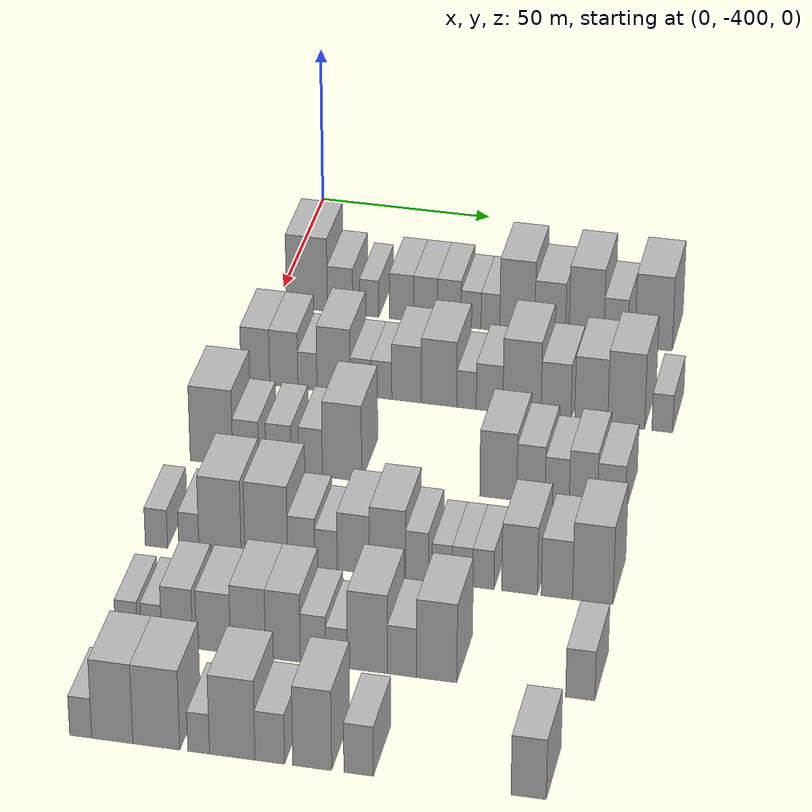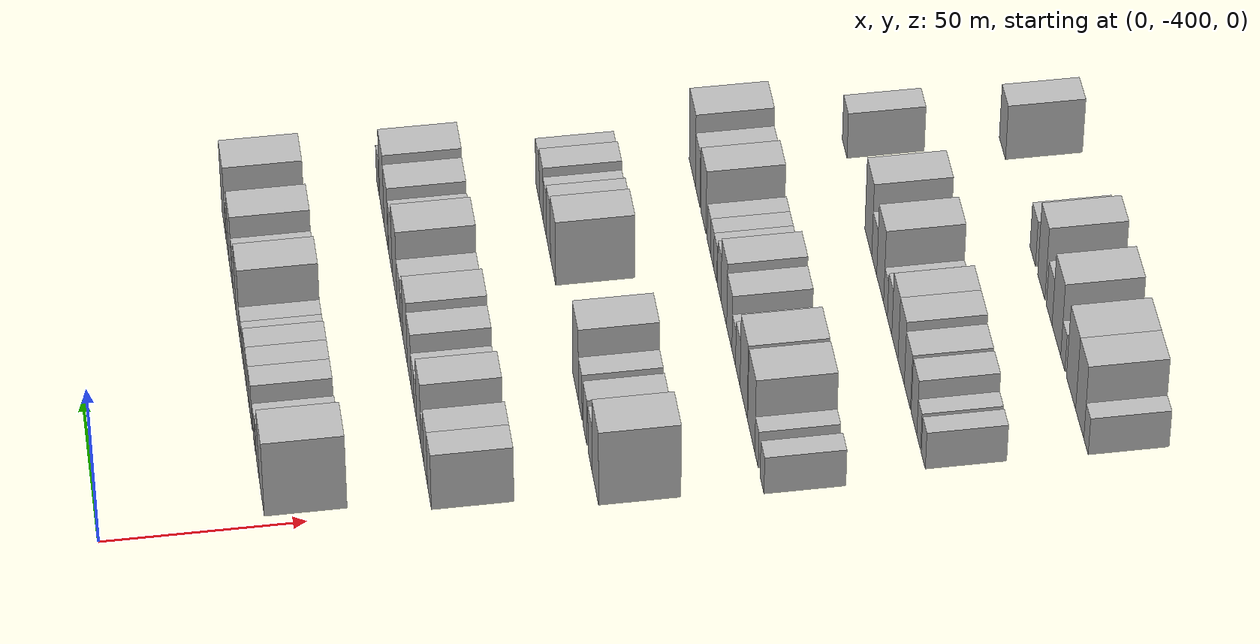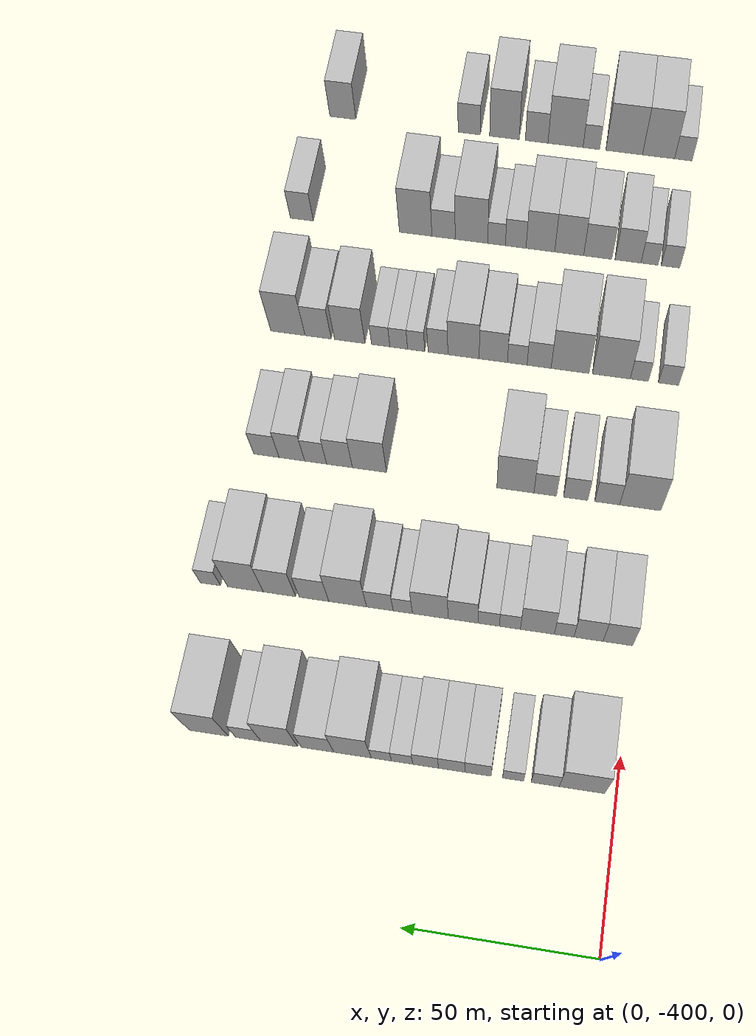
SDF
<sdf version="1.6">
 <world name="default">
  <model name="building_26">
   <static>1</static>
   <pose>50.0000 -390.8958 0 0.000000 0.000000 0.000000</pose>
   <link name="link">
    <pose>0 0 12.00 0 0 0</pose>
    <collision name="collision"><geometry><box><size>20.0000 11.8861 24.0000</size></box></geometry></collision>
    <visual name="visual">
     <cast_shadows>0</cast_shadows>
     <geometry><box><size>20.0000 11.8861 24.0000</size></box></geometry>
     <material>
      <script>
       <uri>model://HANNAS_wall/materials/scripts</uri>
       <uri>model://HANNAS_wall/materials/textures</uri>
       <name>vrc/HANNAS_wall</name>
      </script>
     </material>
    </visual>
   </link>
  </model>
  <model name="building_27">
   <static>1</static>
   <pose>50.0000 -381.2892 0 0.000000 0.000000 0.000000</pose>
   <link name="link">
    <pose>0 0 7.50 0 0 0</pose>
    <collision name="collision"><geometry><box><size>20.0000 7.3271 15.0000</size></box></geometry></collision>
    <visual name="visual">
     <cast_shadows>0</cast_shadows>
     <geometry><box><size>20.0000 7.3271 15.0000</size></box></geometry>
     <material>
      <script>
       <uri>model://HANNAS_wall/materials/scripts</uri>
       <uri>model://HANNAS_wall/materials/textures</uri>
       <name>vrc/HANNAS_wall</name>
      </script>
     </material>
    </visual>
   </link>
  </model>
  <model name="building_28">
   <static>1</static>
   <pose>50.0000 -372.8500 0 0.000000 0.000000 0.000000</pose>
   <link name="link">
    <pose>0 0 6.00 0 0 0</pose>
    <collision name="collision"><geometry><box><size>20.0000 5.5512 12.0000</size></box></geometry></collision>
    <visual name="visual">
     <cast_shadows>0</cast_shadows>
     <geometry><box><size>20.0000 5.5512 12.0000</size></box></geometry>
     <material>
      <script>
       <uri>model://HANNAS_wall/materials/scripts</uri>
       <uri>model://HANNAS_wall/materials/textures</uri>
       <name>vrc/HANNAS_wall</name>
      </script>
     </material>
    </visual>
   </link>
  </model>
  <model name="building_29">
   <static>1</static>
   <pose>50.0000 -363.5970 0 0.000000 0.000000 0.000000</pose>
   <link name="link">
    <pose>0 0 7.50 0 0 0</pose>
    <collision name="collision"><geometry><box><size>20.0000 6.9548 15.0000</size></box></geometry></collision>
    <visual name="visual">
     <cast_shadows>0</cast_shadows>
     <geometry><box><size>20.0000 6.9548 15.0000</size></box></geometry>
     <material>
      <script>
       <uri>model://HANNAS_wall/materials/scripts</uri>
       <uri>model://HANNAS_wall/materials/textures</uri>
       <name>vrc/HANNAS_wall</name>
      </script>
     </material>
    </visual>
   </link>
  </model>
  <model name="building_30">
   <static>1</static>
   <pose>50.0000 -356.6637 0 0.000000 0.000000 0.000000</pose>
   <link name="link">
    <pose>0 0 7.50 0 0 0</pose>
    <collision name="collision"><geometry><box><size>20.0000 6.9119 15.0000</size></box></geometry></collision>
    <visual name="visual">
     <cast_shadows>0</cast_shadows>
     <geometry><box><size>20.0000 6.9119 15.0000</size></box></geometry>
     <material>
      <script>
       <uri>model://HANNAS_wall/materials/scripts</uri>
       <uri>model://HANNAS_wall/materials/textures</uri>
       <name>vrc/HANNAS_wall</name>
      </script>
     </material>
    </visual>
   </link>
  </model>
  <model name="building_31">
   <static>1</static>
   <pose>50.0000 -349.8199 0 0.000000 0.000000 0.000000</pose>
   <link name="link">
    <pose>0 0 7.50 0 0 0</pose>
    <collision name="collision"><geometry><box><size>20.0000 6.7757 15.0000</size></box></geometry></collision>
    <visual name="visual">
     <cast_shadows>0</cast_shadows>
     <geometry><box><size>20.0000 6.7757 15.0000</size></box></geometry>
     <material>
      <script>
       <uri>model://HANNAS_wall/materials/scripts</uri>
       <uri>model://HANNAS_wall/materials/textures</uri>
       <name>vrc/HANNAS_wall</name>
      </script>
     </material>
    </visual>
   </link>
  </model>
  <model name="building_32">
   <static>1</static>
   <pose>50.0000 -343.5941 0 0.000000 0.000000 0.000000</pose>
   <link name="link">
    <pose>0 0 6.00 0 0 0</pose>
    <collision name="collision"><geometry><box><size>20.0000 5.6757 12.0000</size></box></geometry></collision>
    <visual name="visual">
     <cast_shadows>0</cast_shadows>
     <geometry><box><size>20.0000 5.6757 12.0000</size></box></geometry>
     <material>
      <script>
       <uri>model://HANNAS_wall/materials/scripts</uri>
       <uri>model://HANNAS_wall/materials/textures</uri>
       <name>vrc/HANNAS_wall</name>
      </script>
     </material>
    </visual>
   </link>
  </model>
  <model name="building_33">
   <static>1</static>
   <pose>50.0000 -338.0735 0 0.000000 0.000000 0.000000</pose>
   <link name="link">
    <pose>0 0 6.00 0 0 0</pose>
    <collision name="collision"><geometry><box><size>20.0000 5.3656 12.0000</size></box></geometry></collision>
    <visual name="visual">
     <cast_shadows>0</cast_shadows>
     <geometry><box><size>20.0000 5.3656 12.0000</size></box></geometry>
     <material>
      <script>
       <uri>model://HANNAS_wall/materials/scripts</uri>
       <uri>model://HANNAS_wall/materials/textures</uri>
       <name>vrc/HANNAS_wall</name>
      </script>
     </material>
    </visual>
   </link>
  </model>
  <model name="building_34">
   <static>1</static>
   <pose>50.0000 -330.3880 0 0.000000 0.000000 0.000000</pose>
   <link name="link">
    <pose>0 0 12.00 0 0 0</pose>
    <collision name="collision"><geometry><box><size>20.0000 10.0054 24.0000</size></box></geometry></collision>
    <visual name="visual">
     <cast_shadows>0</cast_shadows>
     <geometry><box><size>20.0000 10.0054 24.0000</size></box></geometry>
     <material>
      <script>
       <uri>model://HANNAS_wall/materials/scripts</uri>
       <uri>model://HANNAS_wall/materials/textures</uri>
       <name>vrc/HANNAS_wall</name>
      </script>
     </material>
    </visual>
   </link>
  </model>
  <model name="building_35">
   <static>1</static>
   <pose>50.0000 -321.0289 0 0.000000 0.000000 0.000000</pose>
   <link name="link">
    <pose>0 0 9.00 0 0 0</pose>
    <collision name="collision"><geometry><box><size>20.0000 8.7128 18.0000</size></box></geometry></collision>
    <visual name="visual">
     <cast_shadows>0</cast_shadows>
     <geometry><box><size>20.0000 8.7128 18.0000</size></box></geometry>
     <material>
      <script>
       <uri>model://HANNAS_wall/materials/scripts</uri>
       <uri>model://HANNAS_wall/materials/textures</uri>
       <name>vrc/HANNAS_wall</name>
      </script>
     </material>
    </visual>
   </link>
  </model>
  <model name="building_36">
   <static>1</static>
   <pose>50.0000 -310.7401 0 0.000000 0.000000 0.000000</pose>
   <link name="link">
    <pose>0 0 12.00 0 0 0</pose>
    <collision name="collision"><geometry><box><size>20.0000 9.8648 24.0000</size></box></geometry></collision>
    <visual name="visual">
     <cast_shadows>0</cast_shadows>
     <geometry><box><size>20.0000 9.8648 24.0000</size></box></geometry>
     <material>
      <script>
       <uri>model://HANNAS_wall/materials/scripts</uri>
       <uri>model://HANNAS_wall/materials/textures</uri>
       <name>vrc/HANNAS_wall</name>
      </script>
     </material>
    </visual>
   </link>
  </model>
  <model name="building_37">
   <static>1</static>
   <pose>50.0000 -302.4191 0 0.000000 0.000000 0.000000</pose>
   <link name="link">
    <pose>0 0 7.50 0 0 0</pose>
    <collision name="collision"><geometry><box><size>20.0000 6.7772 15.0000</size></box></geometry></collision>
    <visual name="visual">
     <cast_shadows>0</cast_shadows>
     <geometry><box><size>20.0000 6.7772 15.0000</size></box></geometry>
     <material>
      <script>
       <uri>model://HANNAS_wall/materials/scripts</uri>
       <uri>model://HANNAS_wall/materials/textures</uri>
       <name>vrc/HANNAS_wall</name>
      </script>
     </material>
    </visual>
   </link>
  </model>
  <model name="building_38">
   <static>1</static>
   <pose>50.0000 -291.7597 0 0.000000 0.000000 0.000000</pose>
   <link name="link">
    <pose>0 0 12.00 0 0 0</pose>
    <collision name="collision"><geometry><box><size>20.0000 10.5417 24.0000</size></box></geometry></collision>
    <visual name="visual">
     <cast_shadows>0</cast_shadows>
     <geometry><box><size>20.0000 10.5417 24.0000</size></box></geometry>
     <material>
      <script>
       <uri>model://HANNAS_wall/materials/scripts</uri>
       <uri>model://HANNAS_wall/materials/textures</uri>
       <name>vrc/HANNAS_wall</name>
      </script>
     </material>
    </visual>
   </link>
  </model>
  <model name="building_159">
   <static>1</static>
   <pose>90.0000 -396.1347 0 0.000000 0.000000 0.000000</pose>
   <link name="link">
    <pose>0 0 9.00 0 0 0</pose>
    <collision name="collision"><geometry><box><size>20.0000 8.0640 18.0000</size></box></geometry></collision>
    <visual name="visual">
     <cast_shadows>0</cast_shadows>
     <geometry><box><size>20.0000 8.0640 18.0000</size></box></geometry>
     <material>
      <script>
       <uri>model://HANNAS_wall/materials/scripts</uri>
       <uri>model://HANNAS_wall/materials/textures</uri>
       <name>vrc/HANNAS_wall</name>
      </script>
     </material>
    </visual>
   </link>
  </model>
  <model name="building_160">
   <static>1</static>
   <pose>90.0000 -388.1130 0 0.000000 0.000000 0.000000</pose>
   <link name="link">
    <pose>0 0 9.00 0 0 0</pose>
    <collision name="collision"><geometry><box><size>20.0000 7.9795 18.0000</size></box></geometry></collision>
    <visual name="visual">
     <cast_shadows>0</cast_shadows>
     <geometry><box><size>20.0000 7.9795 18.0000</size></box></geometry>
     <material>
      <script>
       <uri>model://HANNAS_wall/materials/scripts</uri>
       <uri>model://HANNAS_wall/materials/textures</uri>
       <name>vrc/HANNAS_wall</name>
      </script>
     </material>
    </visual>
   </link>
  </model>
  <model name="building_161">
   <static>1</static>
   <pose>90.0000 -381.4385 0 0.000000 0.000000 0.000000</pose>
   <link name="link">
    <pose>0 0 6.00 0 0 0</pose>
    <collision name="collision"><geometry><box><size>20.0000 5.3695 12.0000</size></box></geometry></collision>
    <visual name="visual">
     <cast_shadows>0</cast_shadows>
     <geometry><box><size>20.0000 5.3695 12.0000</size></box></geometry>
     <material>
      <script>
       <uri>model://HANNAS_wall/materials/scripts</uri>
       <uri>model://HANNAS_wall/materials/textures</uri>
       <name>vrc/HANNAS_wall</name>
      </script>
     </material>
    </visual>
   </link>
  </model>
  <model name="building_162">
   <static>1</static>
   <pose>90.0000 -374.0866 0 0.000000 0.000000 0.000000</pose>
   <link name="link">
    <pose>0 0 10.50 0 0 0</pose>
    <collision name="collision"><geometry><box><size>20.0000 9.3342 21.0000</size></box></geometry></collision>
    <visual name="visual">
     <cast_shadows>0</cast_shadows>
     <geometry><box><size>20.0000 9.3342 21.0000</size></box></geometry>
     <material>
      <script>
       <uri>model://HANNAS_wall/materials/scripts</uri>
       <uri>model://HANNAS_wall/materials/textures</uri>
       <name>vrc/HANNAS_wall</name>
      </script>
     </material>
    </visual>
   </link>
  </model>
  <model name="building_163">
   <static>1</static>
   <pose>90.0000 -366.5296 0 0.000000 0.000000 0.000000</pose>
   <link name="link">
    <pose>0 0 6.00 0 0 0</pose>
    <collision name="collision"><geometry><box><size>20.0000 5.7799 12.0000</size></box></geometry></collision>
    <visual name="visual">
     <cast_shadows>0</cast_shadows>
     <geometry><box><size>20.0000 5.7799 12.0000</size></box></geometry>
     <material>
      <script>
       <uri>model://HANNAS_wall/materials/scripts</uri>
       <uri>model://HANNAS_wall/materials/textures</uri>
       <name>vrc/HANNAS_wall</name>
      </script>
     </material>
    </visual>
   </link>
  </model>
  <model name="building_164">
   <static>1</static>
   <pose>90.0000 -360.6935 0 0.000000 0.000000 0.000000</pose>
   <link name="link">
    <pose>0 0 6.00 0 0 0</pose>
    <collision name="collision"><geometry><box><size>20.0000 5.8923 12.0000</size></box></geometry></collision>
    <visual name="visual">
     <cast_shadows>0</cast_shadows>
     <geometry><box><size>20.0000 5.8923 12.0000</size></box></geometry>
     <material>
      <script>
       <uri>model://HANNAS_wall/materials/scripts</uri>
       <uri>model://HANNAS_wall/materials/textures</uri>
       <name>vrc/HANNAS_wall</name>
      </script>
     </material>
    </visual>
   </link>
  </model>
  <model name="building_165">
   <static>1</static>
   <pose>90.0000 -353.6318 0 0.000000 0.000000 0.000000</pose>
   <link name="link">
    <pose>0 0 9.00 0 0 0</pose>
    <collision name="collision"><geometry><box><size>20.0000 8.2311 18.0000</size></box></geometry></collision>
    <visual name="visual">
     <cast_shadows>0</cast_shadows>
     <geometry><box><size>20.0000 8.2311 18.0000</size></box></geometry>
     <material>
      <script>
       <uri>model://HANNAS_wall/materials/scripts</uri>
       <uri>model://HANNAS_wall/materials/textures</uri>
       <name>vrc/HANNAS_wall</name>
      </script>
     </material>
    </visual>
   </link>
  </model>
  <model name="building_166">
   <static>1</static>
   <pose>90.0000 -344.5657 0 0.000000 0.000000 0.000000</pose>
   <link name="link">
    <pose>0 0 10.50 0 0 0</pose>
    <collision name="collision"><geometry><box><size>20.0000 9.9011 21.0000</size></box></geometry></collision>
    <visual name="visual">
     <cast_shadows>0</cast_shadows>
     <geometry><box><size>20.0000 9.9011 21.0000</size></box></geometry>
     <material>
      <script>
       <uri>model://HANNAS_wall/materials/scripts</uri>
       <uri>model://HANNAS_wall/materials/textures</uri>
       <name>vrc/HANNAS_wall</name>
      </script>
     </material>
    </visual>
   </link>
  </model>
  <model name="building_167">
   <static>1</static>
   <pose>90.0000 -336.9242 0 0.000000 0.000000 0.000000</pose>
   <link name="link">
    <pose>0 0 6.00 0 0 0</pose>
    <collision name="collision"><geometry><box><size>20.0000 5.3817 12.0000</size></box></geometry></collision>
    <visual name="visual">
     <cast_shadows>0</cast_shadows>
     <geometry><box><size>20.0000 5.3817 12.0000</size></box></geometry>
     <material>
      <script>
       <uri>model://HANNAS_wall/materials/scripts</uri>
       <uri>model://HANNAS_wall/materials/textures</uri>
       <name>vrc/HANNAS_wall</name>
      </script>
     </material>
    </visual>
   </link>
  </model>
  <model name="building_168">
   <static>1</static>
   <pose>90.0000 -330.5362 0 0.000000 0.000000 0.000000</pose>
   <link name="link">
    <pose>0 0 7.50 0 0 0</pose>
    <collision name="collision"><geometry><box><size>20.0000 7.3944 15.0000</size></box></geometry></collision>
    <visual name="visual">
     <cast_shadows>0</cast_shadows>
     <geometry><box><size>20.0000 7.3944 15.0000</size></box></geometry>
     <material>
      <script>
       <uri>model://HANNAS_wall/materials/scripts</uri>
       <uri>model://HANNAS_wall/materials/textures</uri>
       <name>vrc/HANNAS_wall</name>
      </script>
     </material>
    </visual>
   </link>
  </model>
  <model name="building_169">
   <static>1</static>
   <pose>90.0000 -321.5700 0 0.000000 0.000000 0.000000</pose>
   <link name="link">
    <pose>0 0 12.00 0 0 0</pose>
    <collision name="collision"><geometry><box><size>20.0000 10.5380 24.0000</size></box></geometry></collision>
    <visual name="visual">
     <cast_shadows>0</cast_shadows>
     <geometry><box><size>20.0000 10.5380 24.0000</size></box></geometry>
     <material>
      <script>
       <uri>model://HANNAS_wall/materials/scripts</uri>
       <uri>model://HANNAS_wall/materials/textures</uri>
       <name>vrc/HANNAS_wall</name>
      </script>
     </material>
    </visual>
   </link>
  </model>
  <model name="building_170">
   <static>1</static>
   <pose>90.0000 -312.1652 0 0.000000 0.000000 0.000000</pose>
   <link name="link">
    <pose>0 0 9.00 0 0 0</pose>
    <collision name="collision"><geometry><box><size>20.0000 8.2715 18.0000</size></box></geometry></collision>
    <visual name="visual">
     <cast_shadows>0</cast_shadows>
     <geometry><box><size>20.0000 8.2715 18.0000</size></box></geometry>
     <material>
      <script>
       <uri>model://HANNAS_wall/materials/scripts</uri>
       <uri>model://HANNAS_wall/materials/textures</uri>
       <name>vrc/HANNAS_wall</name>
      </script>
     </material>
    </visual>
   </link>
  </model>
  <model name="building_171">
   <static>1</static>
   <pose>90.0000 -302.4751 0 0.000000 0.000000 0.000000</pose>
   <link name="link">
    <pose>0 0 10.50 0 0 0</pose>
    <collision name="collision"><geometry><box><size>20.0000 9.1089 21.0000</size></box></geometry></collision>
    <visual name="visual">
     <cast_shadows>0</cast_shadows>
     <geometry><box><size>20.0000 9.1089 21.0000</size></box></geometry>
     <material>
      <script>
       <uri>model://HANNAS_wall/materials/scripts</uri>
       <uri>model://HANNAS_wall/materials/textures</uri>
       <name>vrc/HANNAS_wall</name>
      </script>
     </material>
    </visual>
   </link>
  </model>
  <model name="building_172">
   <static>1</static>
   <pose>90.0000 -292.8738 0 0.000000 0.000000 0.000000</pose>
   <link name="link">
    <pose>0 0 12.00 0 0 0</pose>
    <collision name="collision"><geometry><box><size>20.0000 10.0936 24.0000</size></box></geometry></collision>
    <visual name="visual">
     <cast_shadows>0</cast_shadows>
     <geometry><box><size>20.0000 10.0936 24.0000</size></box></geometry>
     <material>
      <script>
       <uri>model://HANNAS_wall/materials/scripts</uri>
       <uri>model://HANNAS_wall/materials/textures</uri>
       <name>vrc/HANNAS_wall</name>
      </script>
     </material>
    </visual>
   </link>
  </model>
  <model name="building_173">
   <static>1</static>
   <pose>90.0000 -282.9860 0 0.000000 0.000000 0.000000</pose>
   <link name="link">
    <pose>0 0 6.00 0 0 0</pose>
    <collision name="collision"><geometry><box><size>20.0000 5.6821 12.0000</size></box></geometry></collision>
    <visual name="visual">
     <cast_shadows>0</cast_shadows>
     <geometry><box><size>20.0000 5.6821 12.0000</size></box></geometry>
     <material>
      <script>
       <uri>model://HANNAS_wall/materials/scripts</uri>
       <uri>model://HANNAS_wall/materials/textures</uri>
       <name>vrc/HANNAS_wall</name>
      </script>
     </material>
    </visual>
   </link>
  </model>
  <model name="building_291">
   <static>1</static>
   <pose>130.0000 -398.3612 0 0.000000 0.000000 0.000000</pose>
   <link name="link">
    <pose>0 0 12.00 0 0 0</pose>
    <collision name="collision"><geometry><box><size>20.0000 11.7303 24.0000</size></box></geometry></collision>
    <visual name="visual">
     <cast_shadows>0</cast_shadows>
     <geometry><box><size>20.0000 11.7303 24.0000</size></box></geometry>
     <material>
      <script>
       <uri>model://HANNAS_wall/materials/scripts</uri>
       <uri>model://HANNAS_wall/materials/textures</uri>
       <name>vrc/HANNAS_wall</name>
      </script>
     </material>
    </visual>
   </link>
  </model>
  <model name="building_292">
   <static>1</static>
   <pose>130.0000 -388.9594 0 0.000000 0.000000 0.000000</pose>
   <link name="link">
    <pose>0 0 7.50 0 0 0</pose>
    <collision name="collision"><geometry><box><size>20.0000 7.0733 15.0000</size></box></geometry></collision>
    <visual name="visual">
     <cast_shadows>0</cast_shadows>
     <geometry><box><size>20.0000 7.0733 15.0000</size></box></geometry>
     <material>
      <script>
       <uri>model://HANNAS_wall/materials/scripts</uri>
       <uri>model://HANNAS_wall/materials/textures</uri>
       <name>vrc/HANNAS_wall</name>
      </script>
     </material>
    </visual>
   </link>
  </model>
  <model name="building_293">
   <static>1</static>
   <pose>130.0000 -379.9406 0 0.000000 0.000000 0.000000</pose>
   <link name="link">
    <pose>0 0 7.50 0 0 0</pose>
    <collision name="collision"><geometry><box><size>20.0000 6.9643 15.0000</size></box></geometry></collision>
    <visual name="visual">
     <cast_shadows>0</cast_shadows>
     <geometry><box><size>20.0000 6.9643 15.0000</size></box></geometry>
     <material>
      <script>
       <uri>model://HANNAS_wall/materials/scripts</uri>
       <uri>model://HANNAS_wall/materials/textures</uri>
       <name>vrc/HANNAS_wall</name>
      </script>
     </material>
    </visual>
   </link>
  </model>
  <model name="building_294">
   <static>1</static>
   <pose>130.0000 -371.2298 0 0.000000 0.000000 0.000000</pose>
   <link name="link">
    <pose>0 0 7.50 0 0 0</pose>
    <collision name="collision"><geometry><box><size>20.0000 6.4573 15.0000</size></box></geometry></collision>
    <visual name="visual">
     <cast_shadows>0</cast_shadows>
     <geometry><box><size>20.0000 6.4573 15.0000</size></box></geometry>
     <material>
      <script>
       <uri>model://HANNAS_wall/materials/scripts</uri>
       <uri>model://HANNAS_wall/materials/textures</uri>
       <name>vrc/HANNAS_wall</name>
      </script>
     </material>
    </visual>
   </link>
  </model>
  <model name="building_295">
   <static>1</static>
   <pose>130.0000 -362.6679 0 0.000000 0.000000 0.000000</pose>
   <link name="link">
    <pose>0 0 12.00 0 0 0</pose>
    <collision name="collision"><geometry><box><size>20.0000 10.6665 24.0000</size></box></geometry></collision>
    <visual name="visual">
     <cast_shadows>0</cast_shadows>
     <geometry><box><size>20.0000 10.6665 24.0000</size></box></geometry>
     <material>
      <script>
       <uri>model://HANNAS_wall/materials/scripts</uri>
       <uri>model://HANNAS_wall/materials/textures</uri>
       <name>vrc/HANNAS_wall</name>
      </script>
     </material>
    </visual>
   </link>
  </model>
  <model name="building_296">
   <static>1</static>
   <pose>130.0000 -320.4191 0 0.000000 0.000000 0.000000</pose>
   <link name="link">
    <pose>0 0 10.50 0 0 0</pose>
    <collision name="collision"><geometry><box><size>20.0000 9.9437 21.0000</size></box></geometry></collision>
    <visual name="visual">
     <cast_shadows>0</cast_shadows>
     <geometry><box><size>20.0000 9.9437 21.0000</size></box></geometry>
     <material>
      <script>
       <uri>model://HANNAS_wall/materials/scripts</uri>
       <uri>model://HANNAS_wall/materials/textures</uri>
       <name>vrc/HANNAS_wall</name>
      </script>
     </material>
    </visual>
   </link>
  </model>
  <model name="building_297">
   <static>1</static>
   <pose>130.0000 -311.6768 0 0.000000 0.000000 0.000000</pose>
   <link name="link">
    <pose>0 0 9.00 0 0 0</pose>
    <collision name="collision"><geometry><box><size>20.0000 7.5407 18.0000</size></box></geometry></collision>
    <visual name="visual">
     <cast_shadows>0</cast_shadows>
     <geometry><box><size>20.0000 7.5407 18.0000</size></box></geometry>
     <material>
      <script>
       <uri>model://HANNAS_wall/materials/scripts</uri>
       <uri>model://HANNAS_wall/materials/textures</uri>
       <name>vrc/HANNAS_wall</name>
      </script>
     </material>
    </visual>
   </link>
  </model>
  <model name="building_298">
   <static>1</static>
   <pose>130.0000 -304.6813 0 0.000000 0.000000 0.000000</pose>
   <link name="link">
    <pose>0 0 7.50 0 0 0</pose>
    <collision name="collision"><geometry><box><size>20.0000 6.4504 15.0000</size></box></geometry></collision>
    <visual name="visual">
     <cast_shadows>0</cast_shadows>
     <geometry><box><size>20.0000 6.4504 15.0000</size></box></geometry>
     <material>
      <script>
       <uri>model://HANNAS_wall/materials/scripts</uri>
       <uri>model://HANNAS_wall/materials/textures</uri>
       <name>vrc/HANNAS_wall</name>
      </script>
     </material>
    </visual>
   </link>
  </model>
  <model name="building_299">
   <static>1</static>
   <pose>130.0000 -297.6992 0 0.000000 0.000000 0.000000</pose>
   <link name="link">
    <pose>0 0 9.00 0 0 0</pose>
    <collision name="collision"><geometry><box><size>20.0000 7.5137 18.0000</size></box></geometry></collision>
    <visual name="visual">
     <cast_shadows>0</cast_shadows>
     <geometry><box><size>20.0000 7.5137 18.0000</size></box></geometry>
     <material>
      <script>
       <uri>model://HANNAS_wall/materials/scripts</uri>
       <uri>model://HANNAS_wall/materials/textures</uri>
       <name>vrc/HANNAS_wall</name>
      </script>
     </material>
    </visual>
   </link>
  </model>
  <model name="building_300">
   <static>1</static>
   <pose>130.0000 -290.2318 0 0.000000 0.000000 0.000000</pose>
   <link name="link">
    <pose>0 0 7.50 0 0 0</pose>
    <collision name="collision"><geometry><box><size>20.0000 7.4212 15.0000</size></box></geometry></collision>
    <visual name="visual">
     <cast_shadows>0</cast_shadows>
     <geometry><box><size>20.0000 7.4212 15.0000</size></box></geometry>
     <material>
      <script>
       <uri>model://HANNAS_wall/materials/scripts</uri>
       <uri>model://HANNAS_wall/materials/textures</uri>
       <name>vrc/HANNAS_wall</name>
      </script>
     </material>
    </visual>
   </link>
  </model>
  <model name="building_417">
   <static>1</static>
   <pose>170.0000 -402.9180 0 0.000000 0.000000 0.000000</pose>
   <link name="link">
    <pose>0 0 6.00 0 0 0</pose>
    <collision name="collision"><geometry><box><size>20.0000 5.9623 12.0000</size></box></geometry></collision>
    <visual name="visual">
     <cast_shadows>0</cast_shadows>
     <geometry><box><size>20.0000 5.9623 12.0000</size></box></geometry>
     <material>
      <script>
       <uri>model://HANNAS_wall/materials/scripts</uri>
       <uri>model://HANNAS_wall/materials/textures</uri>
       <name>vrc/HANNAS_wall</name>
      </script>
     </material>
    </visual>
   </link>
  </model>
  <model name="building_418">
   <static>1</static>
   <pose>170.0000 -394.2501 0 0.000000 0.000000 0.000000</pose>
   <link name="link">
    <pose>0 0 6.00 0 0 0</pose>
    <collision name="collision"><geometry><box><size>20.0000 5.3735 12.0000</size></box></geometry></collision>
    <visual name="visual">
     <cast_shadows>0</cast_shadows>
     <geometry><box><size>20.0000 5.3735 12.0000</size></box></geometry>
     <material>
      <script>
       <uri>model://HANNAS_wall/materials/scripts</uri>
       <uri>model://HANNAS_wall/materials/textures</uri>
       <name>vrc/HANNAS_wall</name>
      </script>
     </material>
    </visual>
   </link>
  </model>
  <model name="building_419">
   <static>1</static>
   <pose>170.0000 -385.9324 0 0.000000 0.000000 0.000000</pose>
   <link name="link">
    <pose>0 0 12.00 0 0 0</pose>
    <collision name="collision"><geometry><box><size>20.0000 11.2619 24.0000</size></box></geometry></collision>
    <visual name="visual">
     <cast_shadows>0</cast_shadows>
     <geometry><box><size>20.0000 11.2619 24.0000</size></box></geometry>
     <material>
      <script>
       <uri>model://HANNAS_wall/materials/scripts</uri>
       <uri>model://HANNAS_wall/materials/textures</uri>
       <name>vrc/HANNAS_wall</name>
      </script>
     </material>
    </visual>
   </link>
  </model>
  <model name="building_420">
   <static>1</static>
   <pose>170.0000 -373.6340 0 0.000000 0.000000 0.000000</pose>
   <link name="link">
    <pose>0 0 12.00 0 0 0</pose>
    <collision name="collision"><geometry><box><size>20.0000 11.3350 24.0000</size></box></geometry></collision>
    <visual name="visual">
     <cast_shadows>0</cast_shadows>
     <geometry><box><size>20.0000 11.3350 24.0000</size></box></geometry>
     <material>
      <script>
       <uri>model://HANNAS_wall/materials/scripts</uri>
       <uri>model://HANNAS_wall/materials/textures</uri>
       <name>vrc/HANNAS_wall</name>
      </script>
     </material>
    </visual>
   </link>
  </model>
  <model name="building_421">
   <static>1</static>
   <pose>170.0000 -364.3651 0 0.000000 0.000000 0.000000</pose>
   <link name="link">
    <pose>0 0 7.50 0 0 0</pose>
    <collision name="collision"><geometry><box><size>20.0000 7.2028 15.0000</size></box></geometry></collision>
    <visual name="visual">
     <cast_shadows>0</cast_shadows>
     <geometry><box><size>20.0000 7.2028 15.0000</size></box></geometry>
     <material>
      <script>
       <uri>model://HANNAS_wall/materials/scripts</uri>
       <uri>model://HANNAS_wall/materials/textures</uri>
       <name>vrc/HANNAS_wall</name>
      </script>
     </material>
    </visual>
   </link>
  </model>
  <model name="building_422">
   <static>1</static>
   <pose>170.0000 -357.8250 0 0.000000 0.000000 0.000000</pose>
   <link name="link">
    <pose>0 0 6.00 0 0 0</pose>
    <collision name="collision"><geometry><box><size>20.0000 5.8774 12.0000</size></box></geometry></collision>
    <visual name="visual">
     <cast_shadows>0</cast_shadows>
     <geometry><box><size>20.0000 5.8774 12.0000</size></box></geometry>
     <material>
      <script>
       <uri>model://HANNAS_wall/materials/scripts</uri>
       <uri>model://HANNAS_wall/materials/textures</uri>
       <name>vrc/HANNAS_wall</name>
      </script>
     </material>
    </visual>
   </link>
  </model>
  <model name="building_423">
   <static>1</static>
   <pose>170.0000 -350.6356 0 0.000000 0.000000 0.000000</pose>
   <link name="link">
    <pose>0 0 9.00 0 0 0</pose>
    <collision name="collision"><geometry><box><size>20.0000 8.5014 18.0000</size></box></geometry></collision>
    <visual name="visual">
     <cast_shadows>0</cast_shadows>
     <geometry><box><size>20.0000 8.5014 18.0000</size></box></geometry>
     <material>
      <script>
       <uri>model://HANNAS_wall/materials/scripts</uri>
       <uri>model://HANNAS_wall/materials/textures</uri>
       <name>vrc/HANNAS_wall</name>
      </script>
     </material>
    </visual>
   </link>
  </model>
  <model name="building_424">
   <static>1</static>
   <pose>170.0000 -341.6783 0 0.000000 0.000000 0.000000</pose>
   <link name="link">
    <pose>0 0 10.50 0 0 0</pose>
    <collision name="collision"><geometry><box><size>20.0000 9.4131 21.0000</size></box></geometry></collision>
    <visual name="visual">
     <cast_shadows>0</cast_shadows>
     <geometry><box><size>20.0000 9.4131 21.0000</size></box></geometry>
     <material>
      <script>
       <uri>model://HANNAS_wall/materials/scripts</uri>
       <uri>model://HANNAS_wall/materials/textures</uri>
       <name>vrc/HANNAS_wall</name>
      </script>
     </material>
    </visual>
   </link>
  </model>
  <model name="building_425">
   <static>1</static>
   <pose>170.0000 -333.9697 0 0.000000 0.000000 0.000000</pose>
   <link name="link">
    <pose>0 0 7.50 0 0 0</pose>
    <collision name="collision"><geometry><box><size>20.0000 6.0041 15.0000</size></box></geometry></collision>
    <visual name="visual">
     <cast_shadows>0</cast_shadows>
     <geometry><box><size>20.0000 6.0041 15.0000</size></box></geometry>
     <material>
      <script>
       <uri>model://HANNAS_wall/materials/scripts</uri>
       <uri>model://HANNAS_wall/materials/textures</uri>
       <name>vrc/HANNAS_wall</name>
      </script>
     </material>
    </visual>
   </link>
  </model>
  <model name="building_426">
   <static>1</static>
   <pose>170.0000 -327.3712 0 0.000000 0.000000 0.000000</pose>
   <link name="link">
    <pose>0 0 6.00 0 0 0</pose>
    <collision name="collision"><geometry><box><size>20.0000 5.1931 12.0000</size></box></geometry></collision>
    <visual name="visual">
     <cast_shadows>0</cast_shadows>
     <geometry><box><size>20.0000 5.1931 12.0000</size></box></geometry>
     <material>
      <script>
       <uri>model://HANNAS_wall/materials/scripts</uri>
       <uri>model://HANNAS_wall/materials/textures</uri>
       <name>vrc/HANNAS_wall</name>
      </script>
     </material>
    </visual>
   </link>
  </model>
  <model name="building_427">
   <static>1</static>
   <pose>170.0000 -322.0927 0 0.000000 0.000000 0.000000</pose>
   <link name="link">
    <pose>0 0 6.00 0 0 0</pose>
    <collision name="collision"><geometry><box><size>20.0000 5.3638 12.0000</size></box></geometry></collision>
    <visual name="visual">
     <cast_shadows>0</cast_shadows>
     <geometry><box><size>20.0000 5.3638 12.0000</size></box></geometry>
     <material>
      <script>
       <uri>model://HANNAS_wall/materials/scripts</uri>
       <uri>model://HANNAS_wall/materials/textures</uri>
       <name>vrc/HANNAS_wall</name>
      </script>
     </material>
    </visual>
   </link>
  </model>
  <model name="building_428">
   <static>1</static>
   <pose>170.0000 -316.6210 0 0.000000 0.000000 0.000000</pose>
   <link name="link">
    <pose>0 0 6.00 0 0 0</pose>
    <collision name="collision"><geometry><box><size>20.0000 5.5796 12.0000</size></box></geometry></collision>
    <visual name="visual">
     <cast_shadows>0</cast_shadows>
     <geometry><box><size>20.0000 5.5796 12.0000</size></box></geometry>
     <material>
      <script>
       <uri>model://HANNAS_wall/materials/scripts</uri>
       <uri>model://HANNAS_wall/materials/textures</uri>
       <name>vrc/HANNAS_wall</name>
      </script>
     </material>
    </visual>
   </link>
  </model>
  <model name="building_429">
   <static>1</static>
   <pose>170.0000 -307.2016 0 0.000000 0.000000 0.000000</pose>
   <link name="link">
    <pose>0 0 10.50 0 0 0</pose>
    <collision name="collision"><geometry><box><size>20.0000 9.2591 21.0000</size></box></geometry></collision>
    <visual name="visual">
     <cast_shadows>0</cast_shadows>
     <geometry><box><size>20.0000 9.2591 21.0000</size></box></geometry>
     <material>
      <script>
       <uri>model://HANNAS_wall/materials/scripts</uri>
       <uri>model://HANNAS_wall/materials/textures</uri>
       <name>vrc/HANNAS_wall</name>
      </script>
     </material>
    </visual>
   </link>
  </model>
  <model name="building_430">
   <static>1</static>
   <pose>170.0000 -297.5505 0 0.000000 0.000000 0.000000</pose>
   <link name="link">
    <pose>0 0 9.00 0 0 0</pose>
    <collision name="collision"><geometry><box><size>20.0000 8.0432 18.0000</size></box></geometry></collision>
    <visual name="visual">
     <cast_shadows>0</cast_shadows>
     <geometry><box><size>20.0000 8.0432 18.0000</size></box></geometry>
     <material>
      <script>
       <uri>model://HANNAS_wall/materials/scripts</uri>
       <uri>model://HANNAS_wall/materials/textures</uri>
       <name>vrc/HANNAS_wall</name>
      </script>
     </material>
    </visual>
   </link>
  </model>
  <model name="building_431">
   <static>1</static>
   <pose>170.0000 -288.2983 0 0.000000 0.000000 0.000000</pose>
   <link name="link">
    <pose>0 0 12.00 0 0 0</pose>
    <collision name="collision"><geometry><box><size>20.0000 10.4613 24.0000</size></box></geometry></collision>
    <visual name="visual">
     <cast_shadows>0</cast_shadows>
     <geometry><box><size>20.0000 10.4613 24.0000</size></box></geometry>
     <material>
      <script>
       <uri>model://HANNAS_wall/materials/scripts</uri>
       <uri>model://HANNAS_wall/materials/textures</uri>
       <name>vrc/HANNAS_wall</name>
      </script>
     </material>
    </visual>
   </link>
  </model>
  <model name="building_565">
   <static>1</static>
   <pose>210.0000 -400.0088 0 0.000000 0.000000 0.000000</pose>
   <link name="link">
    <pose>0 0 6.00 0 0 0</pose>
    <collision name="collision"><geometry><box><size>20.0000 5.6868 12.0000</size></box></geometry></collision>
    <visual name="visual">
     <cast_shadows>0</cast_shadows>
     <geometry><box><size>20.0000 5.6868 12.0000</size></box></geometry>
     <material>
      <script>
       <uri>model://HANNAS_wall/materials/scripts</uri>
       <uri>model://HANNAS_wall/materials/textures</uri>
       <name>vrc/HANNAS_wall</name>
      </script>
     </material>
    </visual>
   </link>
  </model>
  <model name="building_566">
   <static>1</static>
   <pose>210.0000 -393.5386 0 0.000000 0.000000 0.000000</pose>
   <link name="link">
    <pose>0 0 6.00 0 0 0</pose>
    <collision name="collision"><geometry><box><size>20.0000 5.2536 12.0000</size></box></geometry></collision>
    <visual name="visual">
     <cast_shadows>0</cast_shadows>
     <geometry><box><size>20.0000 5.2536 12.0000</size></box></geometry>
     <material>
      <script>
       <uri>model://HANNAS_wall/materials/scripts</uri>
       <uri>model://HANNAS_wall/materials/textures</uri>
       <name>vrc/HANNAS_wall</name>
      </script>
     </material>
    </visual>
   </link>
  </model>
  <model name="building_567">
   <static>1</static>
   <pose>210.0000 -386.8990 0 0.000000 0.000000 0.000000</pose>
   <link name="link">
    <pose>0 0 9.00 0 0 0</pose>
    <collision name="collision"><geometry><box><size>20.0000 8.0254 18.0000</size></box></geometry></collision>
    <visual name="visual">
     <cast_shadows>0</cast_shadows>
     <geometry><box><size>20.0000 8.0254 18.0000</size></box></geometry>
     <material>
      <script>
       <uri>model://HANNAS_wall/materials/scripts</uri>
       <uri>model://HANNAS_wall/materials/textures</uri>
       <name>vrc/HANNAS_wall</name>
      </script>
     </material>
    </visual>
   </link>
  </model>
  <model name="building_568">
   <static>1</static>
   <pose>210.0000 -377.5146 0 0.000000 0.000000 0.000000</pose>
   <link name="link">
    <pose>0 0 9.00 0 0 0</pose>
    <collision name="collision"><geometry><box><size>20.0000 8.7435 18.0000</size></box></geometry></collision>
    <visual name="visual">
     <cast_shadows>0</cast_shadows>
     <geometry><box><size>20.0000 8.7435 18.0000</size></box></geometry>
     <material>
      <script>
       <uri>model://HANNAS_wall/materials/scripts</uri>
       <uri>model://HANNAS_wall/materials/textures</uri>
       <name>vrc/HANNAS_wall</name>
      </script>
     </material>
    </visual>
   </link>
  </model>
  <model name="building_569">
   <static>1</static>
   <pose>210.0000 -368.6440 0 0.000000 0.000000 0.000000</pose>
   <link name="link">
    <pose>0 0 10.50 0 0 0</pose>
    <collision name="collision"><geometry><box><size>20.0000 8.9977 21.0000</size></box></geometry></collision>
    <visual name="visual">
     <cast_shadows>0</cast_shadows>
     <geometry><box><size>20.0000 8.9977 21.0000</size></box></geometry>
     <material>
      <script>
       <uri>model://HANNAS_wall/materials/scripts</uri>
       <uri>model://HANNAS_wall/materials/textures</uri>
       <name>vrc/HANNAS_wall</name>
      </script>
     </material>
    </visual>
   </link>
  </model>
  <model name="building_570">
   <static>1</static>
   <pose>210.0000 -359.6724 0 0.000000 0.000000 0.000000</pose>
   <link name="link">
    <pose>0 0 10.50 0 0 0</pose>
    <collision name="collision"><geometry><box><size>20.0000 8.9456 21.0000</size></box></geometry></collision>
    <visual name="visual">
     <cast_shadows>0</cast_shadows>
     <geometry><box><size>20.0000 8.9456 21.0000</size></box></geometry>
     <material>
      <script>
       <uri>model://HANNAS_wall/materials/scripts</uri>
       <uri>model://HANNAS_wall/materials/textures</uri>
       <name>vrc/HANNAS_wall</name>
      </script>
     </material>
    </visual>
   </link>
  </model>
  <model name="building_571">
   <static>1</static>
   <pose>210.0000 -351.9734 0 0.000000 0.000000 0.000000</pose>
   <link name="link">
    <pose>0 0 7.50 0 0 0</pose>
    <collision name="collision"><geometry><box><size>20.0000 6.4523 15.0000</size></box></geometry></collision>
    <visual name="visual">
     <cast_shadows>0</cast_shadows>
     <geometry><box><size>20.0000 6.4523 15.0000</size></box></geometry>
     <material>
      <script>
       <uri>model://HANNAS_wall/materials/scripts</uri>
       <uri>model://HANNAS_wall/materials/textures</uri>
       <name>vrc/HANNAS_wall</name>
      </script>
     </material>
    </visual>
   </link>
  </model>
  <model name="building_572">
   <static>1</static>
   <pose>210.0000 -345.9883 0 0.000000 0.000000 0.000000</pose>
   <link name="link">
    <pose>0 0 6.00 0 0 0</pose>
    <collision name="collision"><geometry><box><size>20.0000 5.5180 12.0000</size></box></geometry></collision>
    <visual name="visual">
     <cast_shadows>0</cast_shadows>
     <geometry><box><size>20.0000 5.5180 12.0000</size></box></geometry>
     <material>
      <script>
       <uri>model://HANNAS_wall/materials/scripts</uri>
       <uri>model://HANNAS_wall/materials/textures</uri>
       <name>vrc/HANNAS_wall</name>
      </script>
     </material>
    </visual>
   </link>
  </model>
  <model name="building_573">
   <static>1</static>
   <pose>210.0000 -338.1366 0 0.000000 0.000000 0.000000</pose>
   <link name="link">
    <pose>0 0 12.00 0 0 0</pose>
    <collision name="collision"><geometry><box><size>20.0000 10.1854 24.0000</size></box></geometry></collision>
    <visual name="visual">
     <cast_shadows>0</cast_shadows>
     <geometry><box><size>20.0000 10.1854 24.0000</size></box></geometry>
     <material>
      <script>
       <uri>model://HANNAS_wall/materials/scripts</uri>
       <uri>model://HANNAS_wall/materials/textures</uri>
       <name>vrc/HANNAS_wall</name>
      </script>
     </material>
    </visual>
   </link>
  </model>
  <model name="building_574">
   <static>1</static>
   <pose>210.0000 -329.3625 0 0.000000 0.000000 0.000000</pose>
   <link name="link">
    <pose>0 0 7.50 0 0 0</pose>
    <collision name="collision"><geometry><box><size>20.0000 7.3628 15.0000</size></box></geometry></collision>
    <visual name="visual">
     <cast_shadows>0</cast_shadows>
     <geometry><box><size>20.0000 7.3628 15.0000</size></box></geometry>
     <material>
      <script>
       <uri>model://HANNAS_wall/materials/scripts</uri>
       <uri>model://HANNAS_wall/materials/textures</uri>
       <name>vrc/HANNAS_wall</name>
      </script>
     </material>
    </visual>
   </link>
  </model>
  <model name="building_575">
   <static>1</static>
   <pose>210.0000 -320.5662 0 0.000000 0.000000 0.000000</pose>
   <link name="link">
    <pose>0 0 12.00 0 0 0</pose>
    <collision name="collision"><geometry><box><size>20.0000 10.2298 24.0000</size></box></geometry></collision>
    <visual name="visual">
     <cast_shadows>0</cast_shadows>
     <geometry><box><size>20.0000 10.2298 24.0000</size></box></geometry>
     <material>
      <script>
       <uri>model://HANNAS_wall/materials/scripts</uri>
       <uri>model://HANNAS_wall/materials/textures</uri>
       <name>vrc/HANNAS_wall</name>
      </script>
     </material>
    </visual>
   </link>
  </model>
  <model name="building_576">
   <static>1</static>
   <pose>210.0000 -284.5016 0 0.000000 0.000000 0.000000</pose>
   <link name="link">
    <pose>0 0 7.50 0 0 0</pose>
    <collision name="collision"><geometry><box><size>20.0000 7.2998 15.0000</size></box></geometry></collision>
    <visual name="visual">
     <cast_shadows>0</cast_shadows>
     <geometry><box><size>20.0000 7.2998 15.0000</size></box></geometry>
     <material>
      <script>
       <uri>model://HANNAS_wall/materials/scripts</uri>
       <uri>model://HANNAS_wall/materials/textures</uri>
       <name>vrc/HANNAS_wall</name>
      </script>
     </material>
    </visual>
   </link>
  </model>
  <model name="building_706">
   <static>1</static>
   <pose>250.0000 -400.6503 0 0.000000 0.000000 0.000000</pose>
   <link name="link">
    <pose>0 0 6.00 0 0 0</pose>
    <collision name="collision"><geometry><box><size>20.0000 5.5629 12.0000</size></box></geometry></collision>
    <visual name="visual">
     <cast_shadows>0</cast_shadows>
     <geometry><box><size>20.0000 5.5629 12.0000</size></box></geometry>
     <material>
      <script>
       <uri>model://HANNAS_wall/materials/scripts</uri>
       <uri>model://HANNAS_wall/materials/textures</uri>
       <name>vrc/HANNAS_wall</name>
      </script>
     </material>
    </visual>
   </link>
  </model>
  <model name="building_707">
   <static>1</static>
   <pose>250.0000 -392.7029 0 0.000000 0.000000 0.000000</pose>
   <link name="link">
    <pose>0 0 12.00 0 0 0</pose>
    <collision name="collision"><geometry><box><size>20.0000 10.3319 24.0000</size></box></geometry></collision>
    <visual name="visual">
     <cast_shadows>0</cast_shadows>
     <geometry><box><size>20.0000 10.3319 24.0000</size></box></geometry>
     <material>
      <script>
       <uri>model://HANNAS_wall/materials/scripts</uri>
       <uri>model://HANNAS_wall/materials/textures</uri>
       <name>vrc/HANNAS_wall</name>
      </script>
     </material>
    </visual>
   </link>
  </model>
  <model name="building_708">
   <static>1</static>
   <pose>250.0000 -381.6574 0 0.000000 0.000000 0.000000</pose>
   <link name="link">
    <pose>0 0 12.00 0 0 0</pose>
    <collision name="collision"><geometry><box><size>20.0000 11.7591 24.0000</size></box></geometry></collision>
    <visual name="visual">
     <cast_shadows>0</cast_shadows>
     <geometry><box><size>20.0000 11.7591 24.0000</size></box></geometry>
     <material>
      <script>
       <uri>model://HANNAS_wall/materials/scripts</uri>
       <uri>model://HANNAS_wall/materials/textures</uri>
       <name>vrc/HANNAS_wall</name>
      </script>
     </material>
    </visual>
   </link>
  </model>
  <model name="building_709">
   <static>1</static>
   <pose>250.0000 -371.0819 0 0.000000 0.000000 0.000000</pose>
   <link name="link">
    <pose>0 0 6.00 0 0 0</pose>
    <collision name="collision"><geometry><box><size>20.0000 5.3921 12.0000</size></box></geometry></collision>
    <visual name="visual">
     <cast_shadows>0</cast_shadows>
     <geometry><box><size>20.0000 5.3921 12.0000</size></box></geometry>
     <material>
      <script>
       <uri>model://HANNAS_wall/materials/scripts</uri>
       <uri>model://HANNAS_wall/materials/textures</uri>
       <name>vrc/HANNAS_wall</name>
      </script>
     </material>
    </visual>
   </link>
  </model>
  <model name="building_710">
   <static>1</static>
   <pose>250.0000 -362.7206 0 0.000000 0.000000 0.000000</pose>
   <link name="link">
    <pose>0 0 12.00 0 0 0</pose>
    <collision name="collision"><geometry><box><size>20.0000 11.3305 24.0000</size></box></geometry></collision>
    <visual name="visual">
     <cast_shadows>0</cast_shadows>
     <geometry><box><size>20.0000 11.3305 24.0000</size></box></geometry>
     <material>
      <script>
       <uri>model://HANNAS_wall/materials/scripts</uri>
       <uri>model://HANNAS_wall/materials/textures</uri>
       <name>vrc/HANNAS_wall</name>
      </script>
     </material>
    </visual>
   </link>
  </model>
  <model name="building_711">
   <static>1</static>
   <pose>250.0000 -353.3865 0 0.000000 0.000000 0.000000</pose>
   <link name="link">
    <pose>0 0 7.50 0 0 0</pose>
    <collision name="collision"><geometry><box><size>20.0000 7.3376 15.0000</size></box></geometry></collision>
    <visual name="visual">
     <cast_shadows>0</cast_shadows>
     <geometry><box><size>20.0000 7.3376 15.0000</size></box></geometry>
     <material>
      <script>
       <uri>model://HANNAS_wall/materials/scripts</uri>
       <uri>model://HANNAS_wall/materials/textures</uri>
       <name>vrc/HANNAS_wall</name>
      </script>
     </material>
    </visual>
   </link>
  </model>
  <model name="building_712">
   <static>1</static>
   <pose>250.0000 -342.9089 0 0.000000 0.000000 0.000000</pose>
   <link name="link">
    <pose>0 0 12.00 0 0 0</pose>
    <collision name="collision"><geometry><box><size>20.0000 9.6177 24.0000</size></box></geometry></collision>
    <visual name="visual">
     <cast_shadows>0</cast_shadows>
     <geometry><box><size>20.0000 9.6177 24.0000</size></box></geometry>
     <material>
      <script>
       <uri>model://HANNAS_wall/materials/scripts</uri>
       <uri>model://HANNAS_wall/materials/textures</uri>
       <name>vrc/HANNAS_wall</name>
      </script>
     </material>
    </visual>
   </link>
  </model>
  <model name="building_713">
   <static>1</static>
   <pose>250.0000 -331.4612 0 0.000000 0.000000 0.000000</pose>
   <link name="link">
    <pose>0 0 7.50 0 0 0</pose>
    <collision name="collision"><geometry><box><size>20.0000 7.2776 15.0000</size></box></geometry></collision>
    <visual name="visual">
     <cast_shadows>0</cast_shadows>
     <geometry><box><size>20.0000 7.2776 15.0000</size></box></geometry>
     <material>
      <script>
       <uri>model://HANNAS_wall/materials/scripts</uri>
       <uri>model://HANNAS_wall/materials/textures</uri>
       <name>vrc/HANNAS_wall</name>
      </script>
     </material>
    </visual>
   </link>
  </model>
  <model name="building_714">
   <static>1</static>
   <pose>250.0000 -289.9764 0 0.000000 0.000000 0.000000</pose>
   <link name="link">
    <pose>0 0 9.00 0 0 0</pose>
    <collision name="collision"><geometry><box><size>20.0000 8.5640 18.0000</size></box></geometry></collision>
    <visual name="visual">
     <cast_shadows>0</cast_shadows>
     <geometry><box><size>20.0000 8.5640 18.0000</size></box></geometry>
     <material>
      <script>
       <uri>model://HANNAS_wall/materials/scripts</uri>
       <uri>model://HANNAS_wall/materials/textures</uri>
       <name>vrc/HANNAS_wall</name>
      </script>
     </material>
    </visual>
   </link>
  </model>
 </world>
</sdf>
